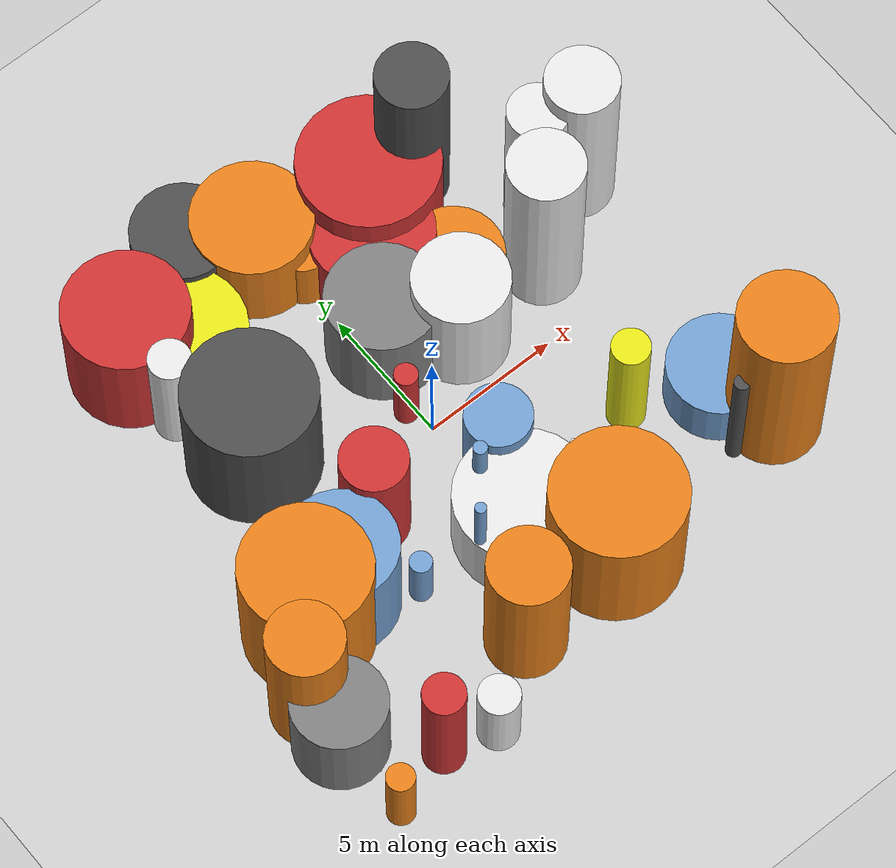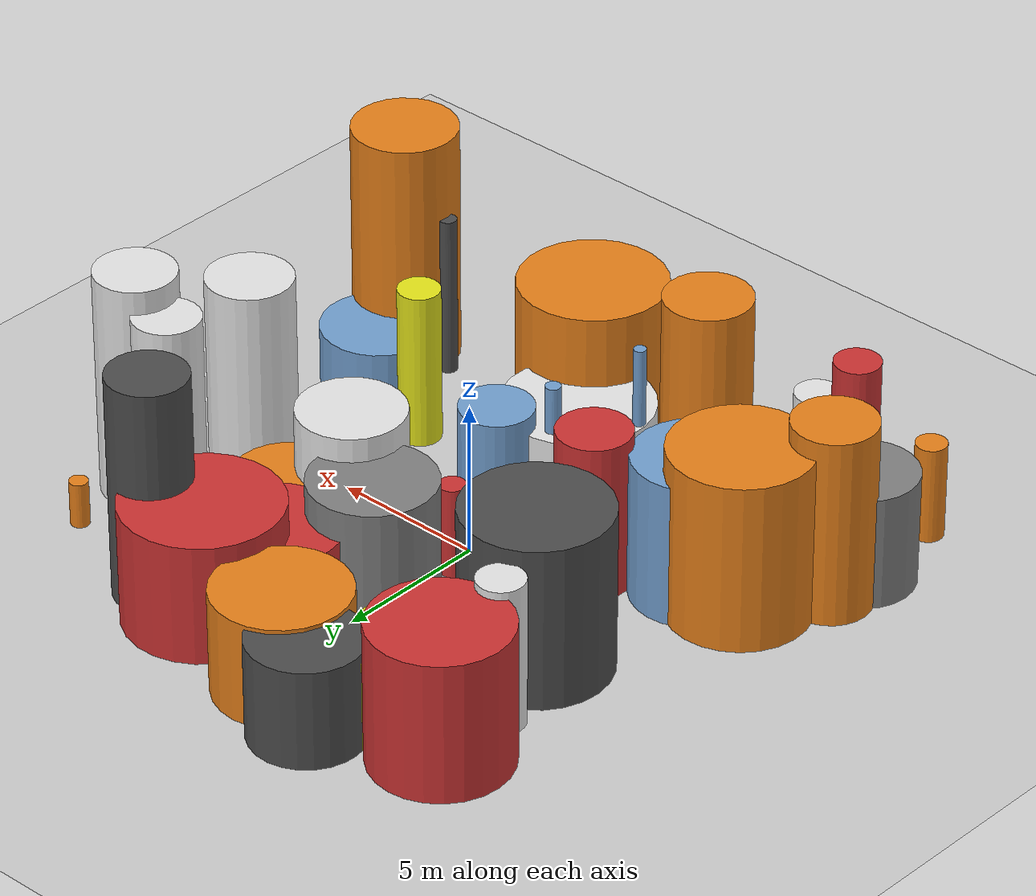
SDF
<?xml version='1.0'?>
<sdf version='1.6'>
  <world name='default'>
    <!-- Sun light -->
    <light name='sun' type='directional'>
      <cast_shadows>1</cast_shadows>
      <pose>0 0 10 0 0 0</pose>
      <diffuse>0.8 0.8 0.8 1</diffuse>
      <specular>0.2 0.2 0.2 1</specular>
      <attenuation>
        <range>1000</range>
        <constant>0.9</constant>
        <linear>0.01</linear>
        <quadratic>0.001</quadratic>
      </attenuation>
      <direction>-0.5 0.1 -0.9</direction>
    </light>

    <!-- Ground plane -->
    <model name='ground_plane'>
      <static>1</static>
      <link name='link'>
        <collision name='collision'>
          <geometry>
            <plane>
              <normal>0 0 1</normal>
              <size>100 100</size>
            </plane>
          </geometry>
          <surface>
            <contact>
              <collide_bitmask>65535</collide_bitmask>
              <ode/>
            </contact>
            <friction>
              <ode>
                <mu>100</mu>
                <mu2>50</mu2>
              </ode>
              <torsional><ode/></torsional>
            </friction>
            <bounce/>
          </surface>
          <max_contacts>10</max_contacts>
        </collision>
        <visual name='visual'>
          <cast_shadows>0</cast_shadows>
          <geometry>
            <plane>
              <normal>0 0 1</normal>
              <size>100 100</size>
            </plane>
          </geometry>
          <material>
            <script>
              <uri>file://media/materials/scripts/gazebo.material</uri>
              <n>Gazebo/Grey</n>
            </script>
          </material>
        </visual>
      </link>
    </model>

    <!-- Environment -->
    <magnetic_field>6e-06 2.3e-05 -4.2e-05</magnetic_field>
    <atmosphere type='adiabatic'/>
    <physics name='default_physics' default='0' type='ode'>
      <gravity>0 0 -9.8</gravity>
      <max_step_size>0.004</max_step_size>
      <real_time_factor>1</real_time_factor>
      <real_time_update_rate>250</real_time_update_rate>
    </physics>
    <scene>
      <ambient>0.4 0.4 0.4 1</ambient>
      <background>0.7 0.7 0.7 1</background>
      <shadows>1</shadows>
    </scene>
    <wind/>
    <spherical_coordinates>
      <surface_model>EARTH_WGS84</surface_model>
      <latitude_deg>0</latitude_deg>
      <longitude_deg>0</longitude_deg>
      <elevation>0</elevation>
      <heading_deg>0</heading_deg>
    </spherical_coordinates>

    <!-- ============ OBSTACLES (39) ============ -->
    <model name='obs_00'>
      <static>1</static>
      <link name='link'>
        <visual name='visual'>
          <geometry>
            <cylinder>
              <radius>0.5190</radius>
              <length>2.1816</length>
            </cylinder>
          </geometry>
          <material>
            <script>
              <n>Gazebo/Grey</n>
              <uri>file://media/materials/scripts/gazebo.material</uri>
            </script>
            <ambient>0.5 0.5 0.5 1</ambient>
          </material>
        </visual>
        <collision name='collision'>
          <geometry>
            <cylinder>
              <radius>0.5190</radius>
              <length>2.1816</length>
            </cylinder>
          </geometry>
          <max_contacts>10</max_contacts>
          <surface>
            <contact><ode/></contact>
            <bounce/>
            <friction>
              <ode><mu>1</mu><mu2>1</mu2></ode>
              <torsional><ode/></torsional>
            </friction>
          </surface>
        </collision>
      </link>
      <pose>3.3411 -7.9911 1.0908 0 0 1.1219</pose>
    </model>

    <model name='obs_01'>
      <static>1</static>
      <link name='link'>
        <visual name='visual'>
          <geometry>
            <cylinder>
              <radius>0.2851</radius>
              <length>5.3609</length>
            </cylinder>
          </geometry>
          <material>
            <script>
              <n>Gazebo/DarkGrey</n>
              <uri>file://media/materials/scripts/gazebo.material</uri>
            </script>
            <ambient>0.3 0.3 0.3 1</ambient>
          </material>
        </visual>
        <collision name='collision'>
          <geometry>
            <cylinder>
              <radius>0.2851</radius>
              <length>5.3609</length>
            </cylinder>
          </geometry>
          <max_contacts>10</max_contacts>
          <surface>
            <contact><ode/></contact>
            <bounce/>
            <friction>
              <ode><mu>1</mu><mu2>1</mu2></ode>
              <torsional><ode/></torsional>
            </friction>
          </surface>
        </collision>
      </link>
      <pose>7.3092 -6.8903 2.6804 0 0 0.4988</pose>
    </model>

    <model name='obs_02'>
      <static>1</static>
      <link name='link'>
        <visual name='visual'>
          <geometry>
            <cylinder>
              <radius>1.9808</radius>
              <length>3.9245</length>
            </cylinder>
          </geometry>
          <material>
            <script>
              <n>Gazebo/Grey</n>
              <uri>file://media/materials/scripts/gazebo.material</uri>
            </script>
            <ambient>0.5 0.5 0.5 1</ambient>
          </material>
        </visual>
        <collision name='collision'>
          <geometry>
            <cylinder>
              <radius>1.9808</radius>
              <length>3.9245</length>
            </cylinder>
          </geometry>
          <max_contacts>10</max_contacts>
          <surface>
            <contact><ode/></contact>
            <bounce/>
            <friction>
              <ode><mu>1</mu><mu2>1</mu2></ode>
              <torsional><ode/></torsional>
            </friction>
          </surface>
        </collision>
      </link>
      <pose>0.6441 3.4012 1.9622 0 0 0.0915</pose>
    </model>

    <model name='obs_03'>
      <static>1</static>
      <link name='link'>
        <visual name='visual'>
          <geometry>
            <cylinder>
              <radius>2.1715</radius>
              <length>2.8952</length>
            </cylinder>
          </geometry>
          <material>
            <script>
              <n>Gazebo/Red</n>
              <uri>file://media/materials/scripts/gazebo.material</uri>
            </script>
            <ambient>0.8 0.2 0.2 1</ambient>
          </material>
        </visual>
        <collision name='collision'>
          <geometry>
            <cylinder>
              <radius>2.1715</radius>
              <length>2.8952</length>
            </cylinder>
          </geometry>
          <max_contacts>10</max_contacts>
          <surface>
            <contact><ode/></contact>
            <bounce/>
            <friction>
              <ode><mu>1</mu><mu2>1</mu2></ode>
              <torsional><ode/></torsional>
            </friction>
          </surface>
        </collision>
      </link>
      <pose>2.2105 5.9395 1.4476 0 0 0.5685</pose>
    </model>

    <model name='obs_04'>
      <static>1</static>
      <link name='link'>
        <visual name='visual'>
          <geometry>
            <cylinder>
              <radius>1.0690</radius>
              <length>6.7589</length>
            </cylinder>
          </geometry>
          <material>
            <script>
              <n>Gazebo/White</n>
              <uri>file://media/materials/scripts/gazebo.material</uri>
            </script>
            <ambient>0.9 0.9 0.9 1</ambient>
          </material>
        </visual>
        <collision name='collision'>
          <geometry>
            <cylinder>
              <radius>1.0690</radius>
              <length>6.7589</length>
            </cylinder>
          </geometry>
          <max_contacts>10</max_contacts>
          <surface>
            <contact><ode/></contact>
            <bounce/>
            <friction>
              <ode><mu>1</mu><mu2>1</mu2></ode>
              <torsional><ode/></torsional>
            </friction>
          </surface>
        </collision>
      </link>
      <pose>7.9991 4.3426 3.3795 0 0 2.2543</pose>
    </model>

    <model name='obs_05'>
      <static>1</static>
      <link name='link'>
        <visual name='visual'>
          <geometry>
            <cylinder>
              <radius>1.3221</radius>
              <length>6.2195</length>
            </cylinder>
          </geometry>
          <material>
            <script>
              <n>Gazebo/Orange</n>
              <uri>file://media/materials/scripts/gazebo.material</uri>
            </script>
            <ambient>0.9 0.5 0.1 1</ambient>
          </material>
        </visual>
        <collision name='collision'>
          <geometry>
            <cylinder>
              <radius>1.3221</radius>
              <length>6.2195</length>
            </cylinder>
          </geometry>
          <max_contacts>10</max_contacts>
          <surface>
            <contact><ode/></contact>
            <bounce/>
            <friction>
              <ode><mu>1</mu><mu2>1</mu2></ode>
              <torsional><ode/></torsional>
            </friction>
          </surface>
        </collision>
      </link>
      <pose>-9.3810 -5.2230 3.1098 0 0 0.3072</pose>
    </model>

    <model name='obs_06'>
      <static>1</static>
      <link name='link'>
        <visual name='visual'>
          <geometry>
            <cylinder>
              <radius>1.7692</radius>
              <length>2.7246</length>
            </cylinder>
          </geometry>
          <material>
            <script>
              <n>Gazebo/Orange</n>
              <uri>file://media/materials/scripts/gazebo.material</uri>
            </script>
            <ambient>0.9 0.5 0.1 1</ambient>
          </material>
        </visual>
        <collision name='collision'>
          <geometry>
            <cylinder>
              <radius>1.7692</radius>
              <length>2.7246</length>
            </cylinder>
          </geometry>
          <max_contacts>10</max_contacts>
          <surface>
            <contact><ode/></contact>
            <bounce/>
            <friction>
              <ode><mu>1</mu><mu2>1</mu2></ode>
              <torsional><ode/></torsional>
            </friction>
          </surface>
        </collision>
      </link>
      <pose>3.8165 3.6075 1.3623 0 0 2.1741</pose>
    </model>

    <model name='obs_07'>
      <static>1</static>
      <link name='link'>
        <visual name='visual'>
          <geometry>
            <cylinder>
              <radius>0.1735</radius>
              <length>2.5384</length>
            </cylinder>
          </geometry>
          <material>
            <script>
              <n>Gazebo/White</n>
              <uri>file://media/materials/scripts/gazebo.material</uri>
            </script>
            <ambient>0.9 0.9 0.9 1</ambient>
          </material>
        </visual>
        <collision name='collision'>
          <geometry>
            <cylinder>
              <radius>0.1735</radius>
              <length>2.5384</length>
            </cylinder>
          </geometry>
          <max_contacts>10</max_contacts>
          <surface>
            <contact><ode/></contact>
            <bounce/>
            <friction>
              <ode><mu>1</mu><mu2>1</mu2></ode>
              <torsional><ode/></torsional>
            </friction>
          </surface>
        </collision>
      </link>
      <pose>2.5958 -4.2052 1.2692 0 0 0.7033</pose>
    </model>

    <model name='obs_08'>
      <static>1</static>
      <link name='link'>
        <visual name='visual'>
          <geometry>
            <cylinder>
              <radius>1.6705</radius>
              <length>7.9584</length>
            </cylinder>
          </geometry>
          <material>
            <script>
              <n>Gazebo/Orange</n>
              <uri>file://media/materials/scripts/gazebo.material</uri>
            </script>
            <ambient>0.9 0.5 0.1 1</ambient>
          </material>
        </visual>
        <collision name='collision'>
          <geometry>
            <cylinder>
              <radius>1.6705</radius>
              <length>7.9584</length>
            </cylinder>
          </geometry>
          <max_contacts>10</max_contacts>
          <surface>
            <contact><ode/></contact>
            <bounce/>
            <friction>
              <ode><mu>1</mu><mu2>1</mu2></ode>
              <torsional><ode/></torsional>
            </friction>
          </surface>
        </collision>
      </link>
      <pose>9.0355 -6.8550 3.9792 0 0 1.8853</pose>
    </model>

    <model name='obs_09'>
      <static>1</static>
      <link name='link'>
        <visual name='visual'>
          <geometry>
            <cylinder>
              <radius>0.3920</radius>
              <length>2.4616</length>
            </cylinder>
          </geometry>
          <material>
            <script>
              <n>Gazebo/Blue</n>
              <uri>file://media/materials/scripts/gazebo.material</uri>
            </script>
            <ambient>0.447 0.624 0.812 1</ambient>
          </material>
        </visual>
        <collision name='collision'>
          <geometry>
            <cylinder>
              <radius>0.3920</radius>
              <length>2.4616</length>
            </cylinder>
          </geometry>
          <max_contacts>10</max_contacts>
          <surface>
            <contact><ode/></contact>
            <bounce/>
            <friction>
              <ode><mu>1</mu><mu2>1</mu2></ode>
              <torsional><ode/></torsional>
            </friction>
          </surface>
        </collision>
      </link>
      <pose>-3.9536 -4.2766 1.2308 0 0 0.7089</pose>
    </model>

    <model name='obs_10'>
      <static>1</static>
      <link name='link'>
        <visual name='visual'>
          <geometry>
            <cylinder>
              <radius>1.9336</radius>
              <length>4.7144</length>
            </cylinder>
          </geometry>
          <material>
            <script>
              <n>Gazebo/Blue</n>
              <uri>file://media/materials/scripts/gazebo.material</uri>
            </script>
            <ambient>0.447 0.624 0.812 1</ambient>
          </material>
        </visual>
        <collision name='collision'>
          <geometry>
            <cylinder>
              <radius>1.9336</radius>
              <length>4.7144</length>
            </cylinder>
          </geometry>
          <max_contacts>10</max_contacts>
          <surface>
            <contact><ode/></contact>
            <bounce/>
            <friction>
              <ode><mu>1</mu><mu2>1</mu2></ode>
              <torsional><ode/></torsional>
            </friction>
          </surface>
        </collision>
      </link>
      <pose>-6.1413 -2.9248 2.3572 0 0 1.0146</pose>
    </model>

    <model name='obs_11'>
      <static>1</static>
      <link name='link'>
        <visual name='visual'>
          <geometry>
            <cylinder>
              <radius>2.1184</radius>
              <length>3.4145</length>
            </cylinder>
          </geometry>
          <material>
            <script>
              <n>Gazebo/Orange</n>
              <uri>file://media/materials/scripts/gazebo.material</uri>
            </script>
            <ambient>0.9 0.5 0.1 1</ambient>
          </material>
        </visual>
        <collision name='collision'>
          <geometry>
            <cylinder>
              <radius>2.1184</radius>
              <length>3.4145</length>
            </cylinder>
          </geometry>
          <max_contacts>10</max_contacts>
          <surface>
            <contact><ode/></contact>
            <bounce/>
            <friction>
              <ode><mu>1</mu><mu2>1</mu2></ode>
              <torsional><ode/></torsional>
            </friction>
          </surface>
        </collision>
      </link>
      <pose>-0.7643 8.6006 1.7073 0 0 0.5617</pose>
    </model>

    <model name='obs_12'>
      <static>1</static>
      <link name='link'>
        <visual name='visual'>
          <geometry>
            <cylinder>
              <radius>1.6295</radius>
              <length>3.7243</length>
            </cylinder>
          </geometry>
          <material>
            <script>
              <n>Gazebo/Grey</n>
              <uri>file://media/materials/scripts/gazebo.material</uri>
            </script>
            <ambient>0.5 0.5 0.5 1</ambient>
          </material>
        </visual>
        <collision name='collision'>
          <geometry>
            <cylinder>
              <radius>1.6295</radius>
              <length>3.7243</length>
            </cylinder>
          </geometry>
          <max_contacts>10</max_contacts>
          <surface>
            <contact><ode/></contact>
            <bounce/>
            <friction>
              <ode><mu>1</mu><mu2>1</mu2></ode>
              <torsional><ode/></torsional>
            </friction>
          </surface>
        </collision>
      </link>
      <pose>-9.3202 -6.7823 1.8622 0 0 0.7838</pose>
    </model>

    <model name='obs_13'>
      <static>1</static>
      <link name='link'>
        <visual name='visual'>
          <geometry>
            <cylinder>
              <radius>1.6871</radius>
              <length>4.7125</length>
            </cylinder>
          </geometry>
          <material>
            <script>
              <n>Gazebo/White</n>
              <uri>file://media/materials/scripts/gazebo.material</uri>
            </script>
            <ambient>0.9 0.9 0.9 1</ambient>
          </material>
        </visual>
        <collision name='collision'>
          <geometry>
            <cylinder>
              <radius>1.6871</radius>
              <length>4.7125</length>
            </cylinder>
          </geometry>
          <max_contacts>10</max_contacts>
          <surface>
            <contact><ode/></contact>
            <bounce/>
            <friction>
              <ode><mu>1</mu><mu2>1</mu2></ode>
              <torsional><ode/></torsional>
            </friction>
          </surface>
        </collision>
      </link>
      <pose>2.8258 1.9943 2.3563 0 0 2.8853</pose>
    </model>

    <model name='obs_14'>
      <static>1</static>
      <link name='link'>
        <visual name='visual'>
          <geometry>
            <cylinder>
              <radius>2.3800</radius>
              <length>2.9990</length>
            </cylinder>
          </geometry>
          <material>
            <script>
              <n>Gazebo/White</n>
              <uri>file://media/materials/scripts/gazebo.material</uri>
            </script>
            <ambient>0.9 0.9 0.9 1</ambient>
          </material>
        </visual>
        <collision name='collision'>
          <geometry>
            <cylinder>
              <radius>2.3800</radius>
              <length>2.9990</length>
            </cylinder>
          </geometry>
          <max_contacts>10</max_contacts>
          <surface>
            <contact><ode/></contact>
            <bounce/>
            <friction>
              <ode><mu>1</mu><mu2>1</mu2></ode>
              <torsional><ode/></torsional>
            </friction>
          </surface>
        </collision>
      </link>
      <pose>0.0040 -4.7102 1.4995 0 0 2.5031</pose>
    </model>

    <model name='obs_15'>
      <static>1</static>
      <link name='link'>
        <visual name='visual'>
          <geometry>
            <cylinder>
              <radius>0.1987</radius>
              <length>5.5927</length>
            </cylinder>
          </geometry>
          <material>
            <script>
              <n>Gazebo/Blue</n>
              <uri>file://media/materials/scripts/gazebo.material</uri>
            </script>
            <ambient>0.447 0.624 0.812 1</ambient>
          </material>
        </visual>
        <collision name='collision'>
          <geometry>
            <cylinder>
              <radius>0.1987</radius>
              <length>5.5927</length>
            </cylinder>
          </geometry>
          <max_contacts>10</max_contacts>
          <surface>
            <contact><ode/></contact>
            <bounce/>
            <friction>
              <ode><mu>1</mu><mu2>1</mu2></ode>
              <torsional><ode/></torsional>
            </friction>
          </surface>
        </collision>
      </link>
      <pose>-2.1094 -5.0502 2.7963 0 0 2.3573</pose>
    </model>

    <model name='obs_16'>
      <static>1</static>
      <link name='link'>
        <visual name='visual'>
          <geometry>
            <cylinder>
              <radius>0.7462</radius>
              <length>4.8814</length>
            </cylinder>
          </geometry>
          <material>
            <script>
              <n>Gazebo/White</n>
              <uri>file://media/materials/scripts/gazebo.material</uri>
            </script>
            <ambient>0.9 0.9 0.9 1</ambient>
          </material>
        </visual>
        <collision name='collision'>
          <geometry>
            <cylinder>
              <radius>0.7462</radius>
              <length>4.8814</length>
            </cylinder>
          </geometry>
          <max_contacts>10</max_contacts>
          <surface>
            <contact><ode/></contact>
            <bounce/>
            <friction>
              <ode><mu>1</mu><mu2>1</mu2></ode>
              <torsional><ode/></torsional>
            </friction>
          </surface>
        </collision>
      </link>
      <pose>-6.4292 5.6241 2.4407 0 0 1.0395</pose>
    </model>

    <model name='obs_17'>
      <static>1</static>
      <link name='link'>
        <visual name='visual'>
          <geometry>
            <cylinder>
              <radius>2.1792</radius>
              <length>4.6266</length>
            </cylinder>
          </geometry>
          <material>
            <script>
              <n>Gazebo/Red</n>
              <uri>file://media/materials/scripts/gazebo.material</uri>
            </script>
            <ambient>0.8 0.2 0.2 1</ambient>
          </material>
        </visual>
        <collision name='collision'>
          <geometry>
            <cylinder>
              <radius>2.1792</radius>
              <length>4.6266</length>
            </cylinder>
          </geometry>
          <max_contacts>10</max_contacts>
          <surface>
            <contact><ode/></contact>
            <bounce/>
            <friction>
              <ode><mu>1</mu><mu2>1</mu2></ode>
              <torsional><ode/></torsional>
            </friction>
          </surface>
        </collision>
      </link>
      <pose>-6.3961 8.0529 2.3133 0 0 1.5803</pose>
    </model>

    <model name='obs_18'>
      <static>1</static>
      <link name='link'>
        <visual name='visual'>
          <geometry>
            <cylinder>
              <radius>0.7191</radius>
              <length>3.2101</length>
            </cylinder>
          </geometry>
          <material>
            <script>
              <n>Gazebo/White</n>
              <uri>file://media/materials/scripts/gazebo.material</uri>
            </script>
            <ambient>0.9 0.9 0.9 1</ambient>
          </material>
        </visual>
        <collision name='collision'>
          <geometry>
            <cylinder>
              <radius>0.7191</radius>
              <length>3.2101</length>
            </cylinder>
          </geometry>
          <max_contacts>10</max_contacts>
          <surface>
            <contact><ode/></contact>
            <bounce/>
            <friction>
              <ode><mu>1</mu><mu2>1</mu2></ode>
              <torsional><ode/></torsional>
            </friction>
          </surface>
        </collision>
      </link>
      <pose>-5.0841 -9.6556 1.6051 0 0 1.6909</pose>
    </model>

    <model name='obs_19'>
      <static>1</static>
      <link name='link'>
        <visual name='visual'>
          <geometry>
            <cylinder>
              <radius>2.3286</radius>
              <length>5.3109</length>
            </cylinder>
          </geometry>
          <material>
            <script>
              <n>Gazebo/Orange</n>
              <uri>file://media/materials/scripts/gazebo.material</uri>
            </script>
            <ambient>0.9 0.5 0.1 1</ambient>
          </material>
        </visual>
        <collision name='collision'>
          <geometry>
            <cylinder>
              <radius>2.3286</radius>
              <length>5.3109</length>
            </cylinder>
          </geometry>
          <max_contacts>10</max_contacts>
          <surface>
            <contact><ode/></contact>
            <bounce/>
            <friction>
              <ode><mu>1</mu><mu2>1</mu2></ode>
              <torsional><ode/></torsional>
            </friction>
          </surface>
        </collision>
      </link>
      <pose>1.7700 -7.3140 2.6555 0 0 0.3857</pose>
    </model>

    <model name='obs_20'>
      <static>1</static>
      <link name='link'>
        <visual name='visual'>
          <geometry>
            <cylinder>
              <radius>1.1659</radius>
              <length>3.6186</length>
            </cylinder>
          </geometry>
          <material>
            <script>
              <n>Gazebo/Blue</n>
              <uri>file://media/materials/scripts/gazebo.material</uri>
            </script>
            <ambient>0.447 0.624 0.812 1</ambient>
          </material>
        </visual>
        <collision name='collision'>
          <geometry>
            <cylinder>
              <radius>1.1659</radius>
              <length>3.6186</length>
            </cylinder>
          </geometry>
          <max_contacts>10</max_contacts>
          <surface>
            <contact><ode/></contact>
            <bounce/>
            <friction>
              <ode><mu>1</mu><mu2>1</mu2></ode>
              <torsional><ode/></torsional>
            </friction>
          </surface>
        </collision>
      </link>
      <pose>0.9751 -2.2129 1.8093 0 0 2.5451</pose>
    </model>

    <model name='obs_21'>
      <static>1</static>
      <link name='link'>
        <visual name='visual'>
          <geometry>
            <cylinder>
              <radius>2.2972</radius>
              <length>2.9607</length>
            </cylinder>
          </geometry>
          <material>
            <script>
              <n>Gazebo/Yellow</n>
              <uri>file://media/materials/scripts/gazebo.material</uri>
            </script>
            <ambient>0.9 0.9 0.1 1</ambient>
          </material>
        </visual>
        <collision name='collision'>
          <geometry>
            <cylinder>
              <radius>2.2972</radius>
              <length>2.9607</length>
            </cylinder>
          </geometry>
          <max_contacts>10</max_contacts>
          <surface>
            <contact><ode/></contact>
            <bounce/>
            <friction>
              <ode><mu>1</mu><mu2>1</mu2></ode>
              <torsional><ode/></torsional>
            </friction>
          </surface>
        </collision>
      </link>
      <pose>-4.9895 7.0707 1.4804 0 0 2.2410</pose>
    </model>

    <model name='obs_22'>
      <static>1</static>
      <link name='link'>
        <visual name='visual'>
          <geometry>
            <cylinder>
              <radius>0.7320</radius>
              <length>5.3313</length>
            </cylinder>
          </geometry>
          <material>
            <script>
              <n>Gazebo/Red</n>
              <uri>file://media/materials/scripts/gazebo.material</uri>
            </script>
            <ambient>0.8 0.2 0.2 1</ambient>
          </material>
        </visual>
        <collision name='collision'>
          <geometry>
            <cylinder>
              <radius>0.7320</radius>
              <length>5.3313</length>
            </cylinder>
          </geometry>
          <max_contacts>10</max_contacts>
          <surface>
            <contact><ode/></contact>
            <bounce/>
            <friction>
              <ode><mu>1</mu><mu2>1</mu2></ode>
              <torsional><ode/></torsional>
            </friction>
          </surface>
        </collision>
      </link>
      <pose>-6.9518 -9.1614 2.6657 0 0 2.1081</pose>
    </model>

    <model name='obs_23'>
      <static>1</static>
      <link name='link'>
        <visual name='visual'>
          <geometry>
            <cylinder>
              <radius>1.8472</radius>
              <length>2.1131</length>
            </cylinder>
          </geometry>
          <material>
            <script>
              <n>Gazebo/Blue</n>
              <uri>file://media/materials/scripts/gazebo.material</uri>
            </script>
            <ambient>0.447 0.624 0.812 1</ambient>
          </material>
        </visual>
        <collision name='collision'>
          <geometry>
            <cylinder>
              <radius>1.8472</radius>
              <length>2.1131</length>
            </cylinder>
          </geometry>
          <max_contacts>10</max_contacts>
          <surface>
            <contact><ode/></contact>
            <bounce/>
            <friction>
              <ode><mu>1</mu><mu2>1</mu2></ode>
              <torsional><ode/></torsional>
            </friction>
          </surface>
        </collision>
      </link>
      <pose>8.3091 -4.8851 1.0566 0 0 2.2139</pose>
    </model>

    <model name='obs_24'>
      <static>1</static>
      <link name='link'>
        <visual name='visual'>
          <geometry>
            <cylinder>
              <radius>2.4932</radius>
              <length>3.9718</length>
            </cylinder>
          </geometry>
          <material>
            <script>
              <n>Gazebo/Red</n>
              <uri>file://media/materials/scripts/gazebo.material</uri>
            </script>
            <ambient>0.8 0.2 0.2 1</ambient>
          </material>
        </visual>
        <collision name='collision'>
          <geometry>
            <cylinder>
              <radius>2.4932</radius>
              <length>3.9718</length>
            </cylinder>
          </geometry>
          <max_contacts>10</max_contacts>
          <surface>
            <contact><ode/></contact>
            <bounce/>
            <friction>
              <ode><mu>1</mu><mu2>1</mu2></ode>
              <torsional><ode/></torsional>
            </friction>
          </surface>
        </collision>
      </link>
      <pose>3.4024 7.5749 1.9859 0 0 0.4098</pose>
    </model>

    <model name='obs_25'>
      <static>1</static>
      <link name='link'>
        <visual name='visual'>
          <geometry>
            <cylinder>
              <radius>1.3919</radius>
              <length>6.2693</length>
            </cylinder>
          </geometry>
          <material>
            <script>
              <n>Gazebo/Orange</n>
              <uri>file://media/materials/scripts/gazebo.material</uri>
            </script>
            <ambient>0.9 0.5 0.1 1</ambient>
          </material>
        </visual>
        <collision name='collision'>
          <geometry>
            <cylinder>
              <radius>1.3919</radius>
              <length>6.2693</length>
            </cylinder>
          </geometry>
          <max_contacts>10</max_contacts>
          <surface>
            <contact><ode/></contact>
            <bounce/>
            <friction>
              <ode><mu>1</mu><mu2>1</mu2></ode>
              <torsional><ode/></torsional>
            </friction>
          </surface>
        </collision>
      </link>
      <pose>-2.3735 -7.7659 3.1347 0 0 1.6455</pose>
    </model>

    <model name='obs_26'>
      <static>1</static>
      <link name='link'>
        <visual name='visual'>
          <geometry>
            <cylinder>
              <radius>0.6723</radius>
              <length>5.1853</length>
            </cylinder>
          </geometry>
          <material>
            <script>
              <n>Gazebo/Yellow</n>
              <uri>file://media/materials/scripts/gazebo.material</uri>
            </script>
            <ambient>0.9 0.9 0.1 1</ambient>
          </material>
        </visual>
        <collision name='collision'>
          <geometry>
            <cylinder>
              <radius>0.6723</radius>
              <length>5.1853</length>
            </cylinder>
          </geometry>
          <max_contacts>10</max_contacts>
          <surface>
            <contact><ode/></contact>
            <bounce/>
            <friction>
              <ode><mu>1</mu><mu2>1</mu2></ode>
              <torsional><ode/></torsional>
            </friction>
          </surface>
        </collision>
      </link>
      <pose>5.3936 -3.5870 2.5927 0 0 0.2678</pose>
    </model>

    <model name='obs_27'>
      <static>1</static>
      <link name='link'>
        <visual name='visual'>
          <geometry>
            <cylinder>
              <radius>0.4924</radius>
              <length>3.1974</length>
            </cylinder>
          </geometry>
          <material>
            <script>
              <n>Gazebo/Orange</n>
              <uri>file://media/materials/scripts/gazebo.material</uri>
            </script>
            <ambient>0.9 0.5 0.1 1</ambient>
          </material>
        </visual>
        <collision name='collision'>
          <geometry>
            <cylinder>
              <radius>0.4924</radius>
              <length>3.1974</length>
            </cylinder>
          </geometry>
          <max_contacts>10</max_contacts>
          <surface>
            <contact><ode/></contact>
            <bounce/>
            <friction>
              <ode><mu>1</mu><mu2>1</mu2></ode>
              <torsional><ode/></torsional>
            </friction>
          </surface>
        </collision>
      </link>
      <pose>-9.2822 -9.8429 1.5987 0 0 2.5301</pose>
    </model>

    <model name='obs_28'>
      <static>1</static>
      <link name='link'>
        <visual name='visual'>
          <geometry>
            <cylinder>
              <radius>2.2381</radius>
              <length>5.5934</length>
            </cylinder>
          </geometry>
          <material>
            <script>
              <n>Gazebo/Orange</n>
              <uri>file://media/materials/scripts/gazebo.material</uri>
            </script>
            <ambient>0.9 0.5 0.1 1</ambient>
          </material>
        </visual>
        <collision name='collision'>
          <geometry>
            <cylinder>
              <radius>2.2381</radius>
              <length>5.5934</length>
            </cylinder>
          </geometry>
          <max_contacts>10</max_contacts>
          <surface>
            <contact><ode/></contact>
            <bounce/>
            <friction>
              <ode><mu>1</mu><mu2>1</mu2></ode>
              <torsional><ode/></torsional>
            </friction>
          </surface>
        </collision>
      </link>
      <pose>-7.7110 -3.1189 2.7967 0 0 2.8304</pose>
    </model>

    <model name='obs_29'>
      <static>1</static>
      <link name='link'>
        <visual name='visual'>
          <geometry>
            <cylinder>
              <radius>0.2997</radius>
              <length>1.4925</length>
            </cylinder>
          </geometry>
          <material>
            <script>
              <n>Gazebo/Orange</n>
              <uri>file://media/materials/scripts/gazebo.material</uri>
            </script>
            <ambient>0.9 0.5 0.1 1</ambient>
          </material>
        </visual>
        <collision name='collision'>
          <geometry>
            <cylinder>
              <radius>0.2997</radius>
              <length>1.4925</length>
            </cylinder>
          </geometry>
          <max_contacts>10</max_contacts>
          <surface>
            <contact><ode/></contact>
            <bounce/>
            <friction>
              <ode><mu>1</mu><mu2>1</mu2></ode>
              <torsional><ode/></torsional>
            </friction>
          </surface>
        </collision>
      </link>
      <pose>9.5128 6.6980 0.7462 0 0 0.7695</pose>
    </model>

    <model name='obs_30'>
      <static>1</static>
      <link name='link'>
        <visual name='visual'>
          <geometry>
            <cylinder>
              <radius>1.2878</radius>
              <length>7.5218</length>
            </cylinder>
          </geometry>
          <material>
            <script>
              <n>Gazebo/White</n>
              <uri>file://media/materials/scripts/gazebo.material</uri>
            </script>
            <ambient>0.9 0.9 0.9 1</ambient>
          </material>
        </visual>
        <collision name='collision'>
          <geometry>
            <cylinder>
              <radius>1.2878</radius>
              <length>7.5218</length>
            </cylinder>
          </geometry>
          <max_contacts>10</max_contacts>
          <surface>
            <contact><ode/></contact>
            <bounce/>
            <friction>
              <ode><mu>1</mu><mu2>1</mu2></ode>
              <torsional><ode/></torsional>
            </friction>
          </surface>
        </collision>
      </link>
      <pose>9.5869 4.0243 3.7609 0 0 2.0731</pose>
    </model>

    <model name='obs_31'>
      <static>1</static>
      <link name='link'>
        <visual name='visual'>
          <geometry>
            <cylinder>
              <radius>1.1691</radius>
              <length>5.1766</length>
            </cylinder>
          </geometry>
          <material>
            <script>
              <n>Gazebo/Red</n>
              <uri>file://media/materials/scripts/gazebo.material</uri>
            </script>
            <ambient>0.8 0.2 0.2 1</ambient>
          </material>
        </visual>
        <collision name='collision'>
          <geometry>
            <cylinder>
              <radius>1.1691</radius>
              <length>5.1766</length>
            </cylinder>
          </geometry>
          <max_contacts>10</max_contacts>
          <surface>
            <contact><ode/></contact>
            <bounce/>
            <friction>
              <ode><mu>1</mu><mu2>1</mu2></ode>
              <torsional><ode/></torsional>
            </friction>
          </surface>
        </collision>
      </link>
      <pose>-3.5776 -1.4248 2.5883 0 0 2.2219</pose>
    </model>

    <model name='obs_32'>
      <static>1</static>
      <link name='link'>
        <visual name='visual'>
          <geometry>
            <cylinder>
              <radius>0.2485</radius>
              <length>4.5473</length>
            </cylinder>
          </geometry>
          <material>
            <script>
              <n>Gazebo/Blue</n>
              <uri>file://media/materials/scripts/gazebo.material</uri>
            </script>
            <ambient>0.447 0.624 0.812 1</ambient>
          </material>
        </visual>
        <collision name='collision'>
          <geometry>
            <cylinder>
              <radius>0.2485</radius>
              <length>4.5473</length>
            </cylinder>
          </geometry>
          <max_contacts>10</max_contacts>
          <surface>
            <contact><ode/></contact>
            <bounce/>
            <friction>
              <ode><mu>1</mu><mu2>1</mu2></ode>
              <torsional><ode/></torsional>
            </friction>
          </surface>
        </collision>
      </link>
      <pose>-0.4894 -3.0627 2.2737 0 0 0.9227</pose>
    </model>

    <model name='obs_33'>
      <static>1</static>
      <link name='link'>
        <visual name='visual'>
          <geometry>
            <cylinder>
              <radius>1.0425</radius>
              <length>2.5116</length>
            </cylinder>
          </geometry>
          <material>
            <script>
              <n>Gazebo/Orange</n>
              <uri>file://media/materials/scripts/gazebo.material</uri>
            </script>
            <ambient>0.9 0.5 0.1 1</ambient>
          </material>
        </visual>
        <collision name='collision'>
          <geometry>
            <cylinder>
              <radius>1.0425</radius>
              <length>2.5116</length>
            </cylinder>
          </geometry>
          <max_contacts>10</max_contacts>
          <surface>
            <contact><ode/></contact>
            <bounce/>
            <friction>
              <ode><mu>1</mu><mu2>1</mu2></ode>
              <torsional><ode/></torsional>
            </friction>
          </surface>
        </collision>
      </link>
      <pose>0.2193 7.1354 1.2558 0 0 1.8192</pose>
    </model>

    <model name='obs_34'>
      <static>1</static>
      <link name='link'>
        <visual name='visual'>
          <geometry>
            <cylinder>
              <radius>1.2668</radius>
              <length>7.4809</length>
            </cylinder>
          </geometry>
          <material>
            <script>
              <n>Gazebo/DarkGrey</n>
              <uri>file://media/materials/scripts/gazebo.material</uri>
            </script>
            <ambient>0.3 0.3 0.3 1</ambient>
          </material>
        </visual>
        <collision name='collision'>
          <geometry>
            <cylinder>
              <radius>1.2668</radius>
              <length>7.4809</length>
            </cylinder>
          </geometry>
          <max_contacts>10</max_contacts>
          <surface>
            <contact><ode/></contact>
            <bounce/>
            <friction>
              <ode><mu>1</mu><mu2>1</mu2></ode>
              <torsional><ode/></torsional>
            </friction>
          </surface>
        </collision>
      </link>
      <pose>5.3653 7.6870 3.7404 0 0 0.2096</pose>
    </model>

    <model name='obs_35'>
      <static>1</static>
      <link name='link'>
        <visual name='visual'>
          <geometry>
            <cylinder>
              <radius>1.7926</radius>
              <length>3.2841</length>
            </cylinder>
          </geometry>
          <material>
            <script>
              <n>Gazebo/DarkGrey</n>
              <uri>file://media/materials/scripts/gazebo.material</uri>
            </script>
            <ambient>0.3 0.3 0.3 1</ambient>
          </material>
        </visual>
        <collision name='collision'>
          <geometry>
            <cylinder>
              <radius>1.7926</radius>
              <length>3.2841</length>
            </cylinder>
          </geometry>
          <max_contacts>10</max_contacts>
          <surface>
            <contact><ode/></contact>
            <bounce/>
            <friction>
              <ode><mu>1</mu><mu2>1</mu2></ode>
              <torsional><ode/></torsional>
            </friction>
          </surface>
        </collision>
      </link>
      <pose>-2.8249 9.7258 1.6421 0 0 0.3493</pose>
    </model>

    <model name='obs_36'>
      <static>1</static>
      <link name='link'>
        <visual name='visual'>
          <geometry>
            <cylinder>
              <radius>1.3458</radius>
              <length>7.7603</length>
            </cylinder>
          </geometry>
          <material>
            <script>
              <n>Gazebo/White</n>
              <uri>file://media/materials/scripts/gazebo.material</uri>
            </script>
            <ambient>0.9 0.9 0.9 1</ambient>
          </material>
        </visual>
        <collision name='collision'>
          <geometry>
            <cylinder>
              <radius>1.3458</radius>
              <length>7.7603</length>
            </cylinder>
          </geometry>
          <max_contacts>10</max_contacts>
          <surface>
            <contact><ode/></contact>
            <bounce/>
            <friction>
              <ode><mu>1</mu><mu2>1</mu2></ode>
              <torsional><ode/></torsional>
            </friction>
          </surface>
        </collision>
      </link>
      <pose>6.6114 2.2718 3.8802 0 0 0.7234</pose>
    </model>

    <model name='obs_37'>
      <static>1</static>
      <link name='link'>
        <visual name='visual'>
          <geometry>
            <cylinder>
              <radius>2.3088</radius>
              <length>5.3860</length>
            </cylinder>
          </geometry>
          <material>
            <script>
              <n>Gazebo/DarkGrey</n>
              <uri>file://media/materials/scripts/gazebo.material</uri>
            </script>
            <ambient>0.3 0.3 0.3 1</ambient>
          </material>
        </visual>
        <collision name='collision'>
          <geometry>
            <cylinder>
              <radius>2.3088</radius>
              <length>5.3860</length>
            </cylinder>
          </geometry>
          <max_contacts>10</max_contacts>
          <surface>
            <contact><ode/></contact>
            <bounce/>
            <friction>
              <ode><mu>1</mu><mu2>1</mu2></ode>
              <torsional><ode/></torsional>
            </friction>
          </surface>
        </collision>
      </link>
      <pose>-5.2766 2.8760 2.6930 0 0 0.5606</pose>
    </model>

    <model name='obs_38'>
      <static>1</static>
      <link name='link'>
        <visual name='visual'>
          <geometry>
            <cylinder>
              <radius>0.4212</radius>
              <length>3.0094</length>
            </cylinder>
          </geometry>
          <material>
            <script>
              <n>Gazebo/Red</n>
              <uri>file://media/materials/scripts/gazebo.material</uri>
            </script>
            <ambient>0.8 0.2 0.2 1</ambient>
          </material>
        </visual>
        <collision name='collision'>
          <geometry>
            <cylinder>
              <radius>0.4212</radius>
              <length>3.0094</length>
            </cylinder>
          </geometry>
          <max_contacts>10</max_contacts>
          <surface>
            <contact><ode/></contact>
            <bounce/>
            <friction>
              <ode><mu>1</mu><mu2>1</mu2></ode>
              <torsional><ode/></torsional>
            </friction>
          </surface>
        </collision>
      </link>
      <pose>-0.2765 1.0418 1.5047 0 0 1.9741</pose>
    </model>

    <!-- GUI camera -->
    <gui fullscreen='0'>
      <camera name='user_camera'>
        <pose>-15 0 18 0 0.85 0.15</pose>
        <view_controller>orbit</view_controller>
        <projection_type>perspective</projection_type>
      </camera>
    </gui>
  </world>
</sdf>
